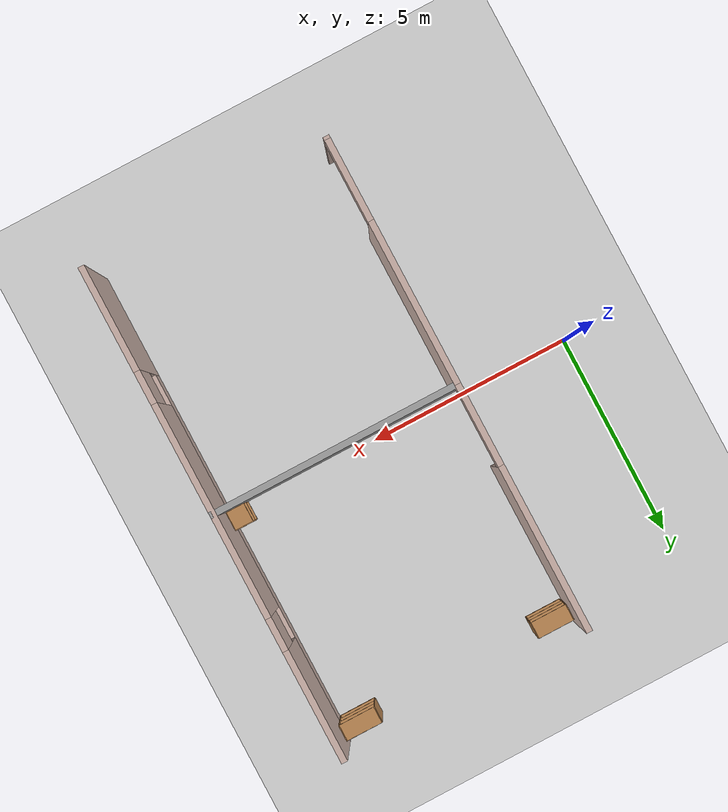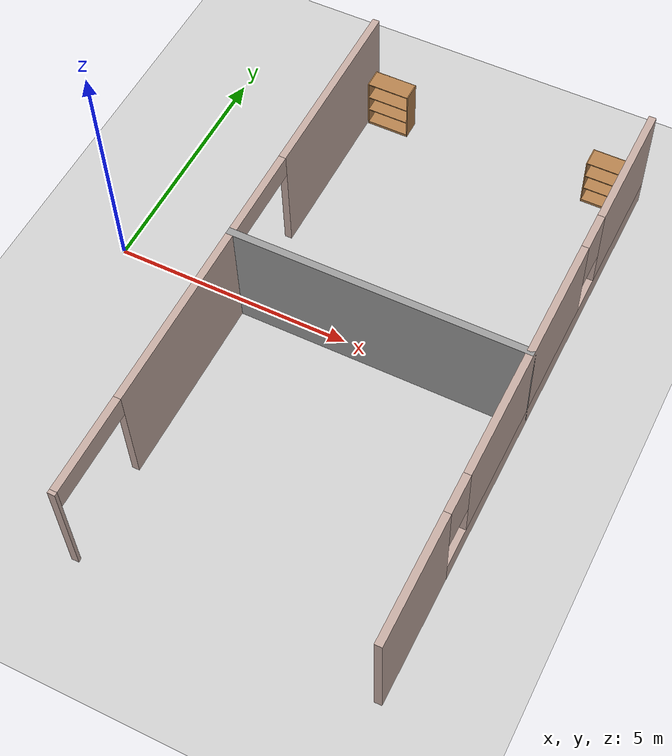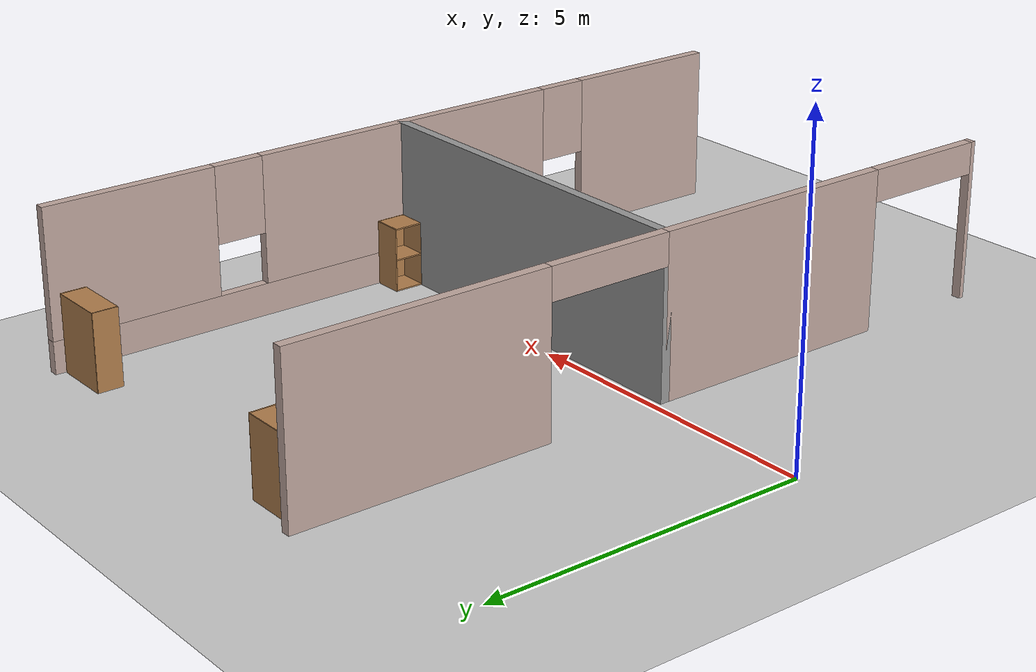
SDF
<sdf version="1.6">
 <world name="default">
  <model name="ground_plane">
   <static>1</static>
   <link name="link">
    <collision name="collision">
     <geometry><plane><normal>0 0 1</normal><size>100 100</size></plane></geometry>
     <surface><friction><ode><mu>100</mu><mu2>50</mu2></ode></friction></surface>
    </collision>
    <visual name="visual">
     <cast_shadows>0</cast_shadows>
     <geometry><plane><normal>0 0 1</normal><size>100 100</size></plane></geometry>
     <material>
      <script><uri>file://media/materials/scripts/gazebo.material</uri><name>Gazebo/Grey</name></script>
     </material>
    </visual>
   </link>
  </model>
  <model name="building">
   <link name="Wall_10">
    <pose>3 0 0 0 -0 1.5708</pose>
    <visual name="Wall_10_Visual_2">
     <pose>4.0375 0 1.25 0 -0 0</pose>
     <geometry><box><size>4.075 0.15 2.5</size></box></geometry>
     <material>
      <script><uri>file://media/materials/scripts/gazebo.material</uri><name>Gazebo/Grey</name></script>
      <ambient>0.760784 0.662745 0.627451 1</ambient>
      <shader type="pixel"/>
      <diffuse>0.7 0.7 0.7 1</diffuse>
      <specular>0.01 0.01 0.01 1</specular>
      <emissive>0 0 0 1</emissive>
     </material>
     <meta><layer>0</layer></meta>
    </visual>
    <visual name="Wall_10_Visual_4">
     <pose>1 0 2.25 0 -0 0</pose>
     <geometry><box><size>2 0.15 0.5</size></box></geometry>
     <material>
      <script><uri>file://media/materials/scripts/gazebo.material</uri><name>Gazebo/Grey</name></script>
      <ambient>0.760784 0.662745 0.627451 1</ambient>
      <shader type="pixel"/>
      <diffuse>0.7 0.7 0.7 1</diffuse>
      <specular>0.01 0.01 0.01 1</specular>
      <emissive>0 0 0 1</emissive>
     </material>
     <meta><layer>0</layer></meta>
    </visual>
    <visual name="Wall_10_Visual_0">
     <pose>-6.0375 0 1.25 0 -0 0</pose>
     <geometry><box><size>0.075 0.15 2.5</size></box></geometry>
     <material>
      <script><uri>file://media/materials/scripts/gazebo.material</uri><name>Gazebo/Grey</name></script>
      <ambient>0.760784 0.662745 0.627451 1</ambient>
      <shader type="pixel"/>
      <diffuse>0.7 0.7 0.7 1</diffuse>
      <specular>0.01 0.01 0.01 1</specular>
      <emissive>0 0 0 1</emissive>
     </material>
     <meta><layer>0</layer></meta>
    </visual>
    <visual name="Wall_10_Visual_3">
     <pose>-5 0 2.25 0 -0 0</pose>
     <geometry><box><size>2 0.15 0.5</size></box></geometry>
     <material>
      <script><uri>file://media/materials/scripts/gazebo.material</uri><name>Gazebo/Grey</name></script>
      <ambient>0.760784 0.662745 0.627451 1</ambient>
      <shader type="pixel"/>
      <diffuse>0.7 0.7 0.7 1</diffuse>
      <specular>0.01 0.01 0.01 1</specular>
      <emissive>0 0 0 1</emissive>
     </material>
     <meta><layer>0</layer></meta>
    </visual>
    <visual name="Wall_10_Visual_1">
     <pose>-2 0 1.25 0 -0 0</pose>
     <geometry><box><size>4 0.15 2.5</size></box></geometry>
     <material>
      <script><uri>file://media/materials/scripts/gazebo.material</uri><name>Gazebo/Grey</name></script>
      <ambient>0.760784 0.662745 0.627451 1</ambient>
      <shader type="pixel"/>
      <diffuse>0.7 0.7 0.7 1</diffuse>
      <specular>0.01 0.01 0.01 1</specular>
      <emissive>0 0 0 1</emissive>
     </material>
     <meta><layer>0</layer></meta>
    </visual>
    <collision name="Wall_10_Collision_4">
     <pose>1 0 2.25 0 -0 0</pose>
     <geometry><box><size>2 0.15 0.5</size></box></geometry>
     <surface>
      <friction>
       <ode><mu>1</mu><mu2>1</mu2><fdir1>0 0 0</fdir1><slip1>0</slip1><slip2>0</slip2></ode>
       <torsional>
        <coefficient>1</coefficient>
        <patch_radius>0</patch_radius>
        <surface_radius>0</surface_radius>
        <use_patch_radius>1</use_patch_radius>
        <ode><slip>0</slip></ode>
       </torsional>
      </friction>
      <bounce><restitution_coefficient>0</restitution_coefficient><threshold>1e+06</threshold></bounce>
      <contact>
       <collide_without_contact>0</collide_without_contact>
       <collide_without_contact_bitmask>1</collide_without_contact_bitmask>
       <collide_bitmask>1</collide_bitmask>
       <ode>
        <soft_cfm>0</soft_cfm>
        <soft_erp>0.2</soft_erp>
        <kp>1e+13</kp>
        <kd>1</kd>
        <max_vel>0.01</max_vel>
        <min_depth>0</min_depth>
       </ode>
       <bullet>
        <split_impulse>1</split_impulse>
        <split_impulse_penetration_threshold>-0.01</split_impulse_penetration_threshold>
        <soft_cfm>0</soft_cfm>
        <soft_erp>0.2</soft_erp>
        <kp>1e+13</kp>
        <kd>1</kd>
       </bullet>
      </contact>
     </surface>
    </collision>
    <collision name="Wall_10_Collision_0">
     <pose>-6.0375 0 1.25 0 -0 0</pose>
     <geometry><box><size>0.075 0.15 2.5</size></box></geometry>
     <surface>
      <friction>
       <ode><mu>1</mu><mu2>1</mu2><fdir1>0 0 0</fdir1><slip1>0</slip1><slip2>0</slip2></ode>
       <torsional>
        <coefficient>1</coefficient>
        <patch_radius>0</patch_radius>
        <surface_radius>0</surface_radius>
        <use_patch_radius>1</use_patch_radius>
        <ode><slip>0</slip></ode>
       </torsional>
      </friction>
      <bounce><restitution_coefficient>0</restitution_coefficient><threshold>1e+06</threshold></bounce>
      <contact>
       <collide_without_contact>0</collide_without_contact>
       <collide_without_contact_bitmask>1</collide_without_contact_bitmask>
       <collide_bitmask>1</collide_bitmask>
       <ode>
        <soft_cfm>0</soft_cfm>
        <soft_erp>0.2</soft_erp>
        <kp>1e+13</kp>
        <kd>1</kd>
        <max_vel>0.01</max_vel>
        <min_depth>0</min_depth>
       </ode>
       <bullet>
        <split_impulse>1</split_impulse>
        <split_impulse_penetration_threshold>-0.01</split_impulse_penetration_threshold>
        <soft_cfm>0</soft_cfm>
        <soft_erp>0.2</soft_erp>
        <kp>1e+13</kp>
        <kd>1</kd>
       </bullet>
      </contact>
     </surface>
    </collision>
    <collision name="Wall_10_Collision_1">
     <pose>-2 0 1.25 0 -0 0</pose>
     <geometry><box><size>4 0.15 2.5</size></box></geometry>
     <surface>
      <friction>
       <ode><mu>1</mu><mu2>1</mu2><fdir1>0 0 0</fdir1><slip1>0</slip1><slip2>0</slip2></ode>
       <torsional>
        <coefficient>1</coefficient>
        <patch_radius>0</patch_radius>
        <surface_radius>0</surface_radius>
        <use_patch_radius>1</use_patch_radius>
        <ode><slip>0</slip></ode>
       </torsional>
      </friction>
      <bounce><restitution_coefficient>0</restitution_coefficient><threshold>1e+06</threshold></bounce>
      <contact>
       <collide_without_contact>0</collide_without_contact>
       <collide_without_contact_bitmask>1</collide_without_contact_bitmask>
       <collide_bitmask>1</collide_bitmask>
       <ode>
        <soft_cfm>0</soft_cfm>
        <soft_erp>0.2</soft_erp>
        <kp>1e+13</kp>
        <kd>1</kd>
        <max_vel>0.01</max_vel>
        <min_depth>0</min_depth>
       </ode>
       <bullet>
        <split_impulse>1</split_impulse>
        <split_impulse_penetration_threshold>-0.01</split_impulse_penetration_threshold>
        <soft_cfm>0</soft_cfm>
        <soft_erp>0.2</soft_erp>
        <kp>1e+13</kp>
        <kd>1</kd>
       </bullet>
      </contact>
     </surface>
    </collision>
    <collision name="Wall_10_Collision_3">
     <pose>-5 0 2.25 0 -0 0</pose>
     <geometry><box><size>2 0.15 0.5</size></box></geometry>
     <surface>
      <friction>
       <ode><mu>1</mu><mu2>1</mu2><fdir1>0 0 0</fdir1><slip1>0</slip1><slip2>0</slip2></ode>
       <torsional>
        <coefficient>1</coefficient>
        <patch_radius>0</patch_radius>
        <surface_radius>0</surface_radius>
        <use_patch_radius>1</use_patch_radius>
        <ode><slip>0</slip></ode>
       </torsional>
      </friction>
      <bounce><restitution_coefficient>0</restitution_coefficient><threshold>1e+06</threshold></bounce>
      <contact>
       <collide_without_contact>0</collide_without_contact>
       <collide_without_contact_bitmask>1</collide_without_contact_bitmask>
       <collide_bitmask>1</collide_bitmask>
       <ode>
        <soft_cfm>0</soft_cfm>
        <soft_erp>0.2</soft_erp>
        <kp>1e+13</kp>
        <kd>1</kd>
        <max_vel>0.01</max_vel>
        <min_depth>0</min_depth>
       </ode>
       <bullet>
        <split_impulse>1</split_impulse>
        <split_impulse_penetration_threshold>-0.01</split_impulse_penetration_threshold>
        <soft_cfm>0</soft_cfm>
        <soft_erp>0.2</soft_erp>
        <kp>1e+13</kp>
        <kd>1</kd>
       </bullet>
      </contact>
     </surface>
    </collision>
    <collision name="Wall_10_Collision_2">
     <pose>4.0375 0 1.25 0 -0 0</pose>
     <geometry><box><size>4.075 0.15 2.5</size></box></geometry>
     <surface>
      <friction>
       <ode><mu>1</mu><mu2>1</mu2><fdir1>0 0 0</fdir1><slip1>0</slip1><slip2>0</slip2></ode>
       <torsional>
        <coefficient>1</coefficient>
        <patch_radius>0</patch_radius>
        <surface_radius>0</surface_radius>
        <use_patch_radius>1</use_patch_radius>
        <ode><slip>0</slip></ode>
       </torsional>
      </friction>
      <bounce><restitution_coefficient>0</restitution_coefficient><threshold>1e+06</threshold></bounce>
      <contact>
       <collide_without_contact>0</collide_without_contact>
       <collide_without_contact_bitmask>1</collide_without_contact_bitmask>
       <collide_bitmask>1</collide_bitmask>
       <ode>
        <soft_cfm>0</soft_cfm>
        <soft_erp>0.2</soft_erp>
        <kp>1e+13</kp>
        <kd>1</kd>
        <max_vel>0.01</max_vel>
        <min_depth>0</min_depth>
       </ode>
       <bullet>
        <split_impulse>1</split_impulse>
        <split_impulse_penetration_threshold>-0.01</split_impulse_penetration_threshold>
        <soft_cfm>0</soft_cfm>
        <soft_erp>0.2</soft_erp>
        <kp>1e+13</kp>
        <kd>1</kd>
       </bullet>
      </contact>
     </surface>
    </collision>
   </link>
   <link name="Wall_12">
    <pose>6 0 0 0 -0 0</pose>
    <visual name="Wall_12_Visual">
     <pose>0 0 1.25 0 -0 0</pose>
     <geometry><box><size>6.15 0.15 2.5</size></box></geometry>
     <material>
      <script><uri>file://media/materials/scripts/gazebo.material</uri><name>Gazebo/Grey</name></script>
      <ambient>1 1 1 1</ambient>
      <shader type="pixel"/>
      <diffuse>0.7 0.7 0.7 1</diffuse>
      <specular>0.01 0.01 0.01 1</specular>
      <emissive>0 0 0 1</emissive>
     </material>
     <meta><layer>0</layer></meta>
    </visual>
    <collision name="Wall_12_Collision">
     <pose>0 0 1.25 0 -0 0</pose>
     <geometry><box><size>6.15 0.15 2.5</size></box></geometry>
     <surface>
      <friction>
       <ode><mu>1</mu><mu2>1</mu2><fdir1>0 0 0</fdir1><slip1>0</slip1><slip2>0</slip2></ode>
       <torsional>
        <coefficient>1</coefficient>
        <patch_radius>0</patch_radius>
        <surface_radius>0</surface_radius>
        <use_patch_radius>1</use_patch_radius>
        <ode><slip>0</slip></ode>
       </torsional>
      </friction>
      <bounce><restitution_coefficient>0</restitution_coefficient><threshold>1e+06</threshold></bounce>
      <contact>
       <collide_without_contact>0</collide_without_contact>
       <collide_without_contact_bitmask>1</collide_without_contact_bitmask>
       <collide_bitmask>1</collide_bitmask>
       <ode>
        <soft_cfm>0</soft_cfm>
        <soft_erp>0.2</soft_erp>
        <kp>1e+13</kp>
        <kd>1</kd>
        <max_vel>0.01</max_vel>
        <min_depth>0</min_depth>
       </ode>
       <bullet>
        <split_impulse>1</split_impulse>
        <split_impulse_penetration_threshold>-0.01</split_impulse_penetration_threshold>
        <soft_cfm>0</soft_cfm>
        <soft_erp>0.2</soft_erp>
        <kp>1e+13</kp>
        <kd>1</kd>
       </bullet>
      </contact>
     </surface>
    </collision>
   </link>
   <link name="Wall_2">
    <pose>9 0 0 0 -0 1.5708</pose>
    <visual name="Wall_2_Visual_1">
     <pose>1.28628 0 0.25 0 -0 0</pose>
     <geometry><box><size>9.57745 0.15 0.5</size></box></geometry>
     <material>
      <script><uri>file://media/materials/scripts/gazebo.material</uri><name>Gazebo/Grey</name></script>
      <ambient>0.760784 0.662745 0.627451 1</ambient>
      <shader type="pixel"/>
      <diffuse>0.7 0.7 0.7 1</diffuse>
      <specular>0.01 0.01 0.01 1</specular>
      <emissive>0 0 0 1</emissive>
     </material>
     <meta><layer>0</layer></meta>
    </visual>
    <visual name="Wall_2_Visual_2">
     <pose>-0.07576 0 1.5 0 -0 0</pose>
     <geometry><box><size>5.25338 0.15 2</size></box></geometry>
     <material>
      <script><uri>file://media/materials/scripts/gazebo.material</uri><name>Gazebo/Grey</name></script>
      <ambient>0.760784 0.662745 0.627451 1</ambient>
      <shader type="pixel"/>
      <diffuse>0.7 0.7 0.7 1</diffuse>
      <specular>0.01 0.01 0.01 1</specular>
      <emissive>0 0 0 1</emissive>
     </material>
     <meta><layer>0</layer></meta>
    </visual>
    <visual name="Wall_2_Visual_3">
     <pose>4.71296 0 1.5 0 -0 0</pose>
     <geometry><box><size>2.72407 0.15 2</size></box></geometry>
     <material>
      <script><uri>file://media/materials/scripts/gazebo.material</uri><name>Gazebo/Grey</name></script>
      <ambient>0.760784 0.662745 0.627451 1</ambient>
      <shader type="pixel"/>
      <diffuse>0.7 0.7 0.7 1</diffuse>
      <specular>0.01 0.01 0.01 1</specular>
      <emissive>0 0 0 1</emissive>
     </material>
     <meta><layer>0</layer></meta>
    </visual>
    <visual name="Wall_2_Visual_0">
     <pose>-4.78873 0 1.25 0 -0 0</pose>
     <geometry><box><size>2.57255 0.15 2.5</size></box></geometry>
     <material>
      <script><uri>file://media/materials/scripts/gazebo.material</uri><name>Gazebo/Grey</name></script>
      <ambient>0.760784 0.662745 0.627451 1</ambient>
      <shader type="pixel"/>
      <diffuse>0.7 0.7 0.7 1</diffuse>
      <specular>0.01 0.01 0.01 1</specular>
      <emissive>0 0 0 1</emissive>
     </material>
     <meta><layer>0</layer></meta>
    </visual>
    <visual name="Wall_2_Visual_5">
     <pose>2.95093 0 1.9 0 -0 0</pose>
     <geometry><box><size>0.8 0.15 1.2</size></box></geometry>
     <material>
      <script><uri>file://media/materials/scripts/gazebo.material</uri><name>Gazebo/Grey</name></script>
      <ambient>0.760784 0.662745 0.627451 1</ambient>
      <shader type="pixel"/>
      <diffuse>0.7 0.7 0.7 1</diffuse>
      <specular>0.01 0.01 0.01 1</specular>
      <emissive>0 0 0 1</emissive>
     </material>
     <meta><layer>0</layer></meta>
    </visual>
    <visual name="Wall_2_Visual_4">
     <pose>-3.10245 0 1.9 0 -0 0</pose>
     <geometry><box><size>0.8 0.15 1.2</size></box></geometry>
     <material>
      <script><uri>file://media/materials/scripts/gazebo.material</uri><name>Gazebo/Grey</name></script>
      <ambient>0.760784 0.662745 0.627451 1</ambient>
      <shader type="pixel"/>
      <diffuse>0.7 0.7 0.7 1</diffuse>
      <specular>0.01 0.01 0.01 1</specular>
      <emissive>0 0 0 1</emissive>
     </material>
     <meta><layer>0</layer></meta>
    </visual>
    <collision name="Wall_2_Collision_0">
     <pose>-4.78873 0 1.25 0 -0 0</pose>
     <geometry><box><size>2.57255 0.15 2.5</size></box></geometry>
     <surface>
      <friction>
       <ode><mu>1</mu><mu2>1</mu2><fdir1>0 0 0</fdir1><slip1>0</slip1><slip2>0</slip2></ode>
       <torsional>
        <coefficient>1</coefficient>
        <patch_radius>0</patch_radius>
        <surface_radius>0</surface_radius>
        <use_patch_radius>1</use_patch_radius>
        <ode><slip>0</slip></ode>
       </torsional>
      </friction>
      <bounce><restitution_coefficient>0</restitution_coefficient><threshold>1e+06</threshold></bounce>
      <contact>
       <collide_without_contact>0</collide_without_contact>
       <collide_without_contact_bitmask>1</collide_without_contact_bitmask>
       <collide_bitmask>1</collide_bitmask>
       <ode>
        <soft_cfm>0</soft_cfm>
        <soft_erp>0.2</soft_erp>
        <kp>1e+13</kp>
        <kd>1</kd>
        <max_vel>0.01</max_vel>
        <min_depth>0</min_depth>
       </ode>
       <bullet>
        <split_impulse>1</split_impulse>
        <split_impulse_penetration_threshold>-0.01</split_impulse_penetration_threshold>
        <soft_cfm>0</soft_cfm>
        <soft_erp>0.2</soft_erp>
        <kp>1e+13</kp>
        <kd>1</kd>
       </bullet>
      </contact>
     </surface>
    </collision>
    <collision name="Wall_2_Collision_2">
     <pose>-0.07576 0 1.5 0 -0 0</pose>
     <geometry><box><size>5.25338 0.15 2</size></box></geometry>
     <surface>
      <friction>
       <ode><mu>1</mu><mu2>1</mu2><fdir1>0 0 0</fdir1><slip1>0</slip1><slip2>0</slip2></ode>
       <torsional>
        <coefficient>1</coefficient>
        <patch_radius>0</patch_radius>
        <surface_radius>0</surface_radius>
        <use_patch_radius>1</use_patch_radius>
        <ode><slip>0</slip></ode>
       </torsional>
      </friction>
      <bounce><restitution_coefficient>0</restitution_coefficient><threshold>1e+06</threshold></bounce>
      <contact>
       <collide_without_contact>0</collide_without_contact>
       <collide_without_contact_bitmask>1</collide_without_contact_bitmask>
       <collide_bitmask>1</collide_bitmask>
       <ode>
        <soft_cfm>0</soft_cfm>
        <soft_erp>0.2</soft_erp>
        <kp>1e+13</kp>
        <kd>1</kd>
        <max_vel>0.01</max_vel>
        <min_depth>0</min_depth>
       </ode>
       <bullet>
        <split_impulse>1</split_impulse>
        <split_impulse_penetration_threshold>-0.01</split_impulse_penetration_threshold>
        <soft_cfm>0</soft_cfm>
        <soft_erp>0.2</soft_erp>
        <kp>1e+13</kp>
        <kd>1</kd>
       </bullet>
      </contact>
     </surface>
    </collision>
    <collision name="Wall_2_Collision_1">
     <pose>1.28628 0 0.25 0 -0 0</pose>
     <geometry><box><size>9.57745 0.15 0.5</size></box></geometry>
     <surface>
      <friction>
       <ode><mu>1</mu><mu2>1</mu2><fdir1>0 0 0</fdir1><slip1>0</slip1><slip2>0</slip2></ode>
       <torsional>
        <coefficient>1</coefficient>
        <patch_radius>0</patch_radius>
        <surface_radius>0</surface_radius>
        <use_patch_radius>1</use_patch_radius>
        <ode><slip>0</slip></ode>
       </torsional>
      </friction>
      <bounce><restitution_coefficient>0</restitution_coefficient><threshold>1e+06</threshold></bounce>
      <contact>
       <collide_without_contact>0</collide_without_contact>
       <collide_without_contact_bitmask>1</collide_without_contact_bitmask>
       <collide_bitmask>1</collide_bitmask>
       <ode>
        <soft_cfm>0</soft_cfm>
        <soft_erp>0.2</soft_erp>
        <kp>1e+13</kp>
        <kd>1</kd>
        <max_vel>0.01</max_vel>
        <min_depth>0</min_depth>
       </ode>
       <bullet>
        <split_impulse>1</split_impulse>
        <split_impulse_penetration_threshold>-0.01</split_impulse_penetration_threshold>
        <soft_cfm>0</soft_cfm>
        <soft_erp>0.2</soft_erp>
        <kp>1e+13</kp>
        <kd>1</kd>
       </bullet>
      </contact>
     </surface>
    </collision>
    <collision name="Wall_2_Collision_4">
     <pose>-3.10245 0 1.9 0 -0 0</pose>
     <geometry><box><size>0.8 0.15 1.2</size></box></geometry>
     <surface>
      <friction>
       <ode><mu>1</mu><mu2>1</mu2><fdir1>0 0 0</fdir1><slip1>0</slip1><slip2>0</slip2></ode>
       <torsional>
        <coefficient>1</coefficient>
        <patch_radius>0</patch_radius>
        <surface_radius>0</surface_radius>
        <use_patch_radius>1</use_patch_radius>
        <ode><slip>0</slip></ode>
       </torsional>
      </friction>
      <bounce><restitution_coefficient>0</restitution_coefficient><threshold>1e+06</threshold></bounce>
      <contact>
       <collide_without_contact>0</collide_without_contact>
       <collide_without_contact_bitmask>1</collide_without_contact_bitmask>
       <collide_bitmask>1</collide_bitmask>
       <ode>
        <soft_cfm>0</soft_cfm>
        <soft_erp>0.2</soft_erp>
        <kp>1e+13</kp>
        <kd>1</kd>
        <max_vel>0.01</max_vel>
        <min_depth>0</min_depth>
       </ode>
       <bullet>
        <split_impulse>1</split_impulse>
        <split_impulse_penetration_threshold>-0.01</split_impulse_penetration_threshold>
        <soft_cfm>0</soft_cfm>
        <soft_erp>0.2</soft_erp>
        <kp>1e+13</kp>
        <kd>1</kd>
       </bullet>
      </contact>
     </surface>
    </collision>
    <collision name="Wall_2_Collision_3">
     <pose>4.71296 0 1.5 0 -0 0</pose>
     <geometry><box><size>2.72407 0.15 2</size></box></geometry>
     <surface>
      <friction>
       <ode><mu>1</mu><mu2>1</mu2><fdir1>0 0 0</fdir1><slip1>0</slip1><slip2>0</slip2></ode>
       <torsional>
        <coefficient>1</coefficient>
        <patch_radius>0</patch_radius>
        <surface_radius>0</surface_radius>
        <use_patch_radius>1</use_patch_radius>
        <ode><slip>0</slip></ode>
       </torsional>
      </friction>
      <bounce><restitution_coefficient>0</restitution_coefficient><threshold>1e+06</threshold></bounce>
      <contact>
       <collide_without_contact>0</collide_without_contact>
       <collide_without_contact_bitmask>1</collide_without_contact_bitmask>
       <collide_bitmask>1</collide_bitmask>
       <ode>
        <soft_cfm>0</soft_cfm>
        <soft_erp>0.2</soft_erp>
        <kp>1e+13</kp>
        <kd>1</kd>
        <max_vel>0.01</max_vel>
        <min_depth>0</min_depth>
       </ode>
       <bullet>
        <split_impulse>1</split_impulse>
        <split_impulse_penetration_threshold>-0.01</split_impulse_penetration_threshold>
        <soft_cfm>0</soft_cfm>
        <soft_erp>0.2</soft_erp>
        <kp>1e+13</kp>
        <kd>1</kd>
       </bullet>
      </contact>
     </surface>
    </collision>
    <collision name="Wall_2_Collision_5">
     <pose>2.95093 0 1.9 0 -0 0</pose>
     <geometry><box><size>0.8 0.15 1.2</size></box></geometry>
     <surface>
      <friction>
       <ode><mu>1</mu><mu2>1</mu2><fdir1>0 0 0</fdir1><slip1>0</slip1><slip2>0</slip2></ode>
       <torsional>
        <coefficient>1</coefficient>
        <patch_radius>0</patch_radius>
        <surface_radius>0</surface_radius>
        <use_patch_radius>1</use_patch_radius>
        <ode><slip>0</slip></ode>
       </torsional>
      </friction>
      <bounce><restitution_coefficient>0</restitution_coefficient><threshold>1e+06</threshold></bounce>
      <contact>
       <collide_without_contact>0</collide_without_contact>
       <collide_without_contact_bitmask>1</collide_without_contact_bitmask>
       <collide_bitmask>1</collide_bitmask>
       <ode>
        <soft_cfm>0</soft_cfm>
        <soft_erp>0.2</soft_erp>
        <kp>1e+13</kp>
        <kd>1</kd>
        <max_vel>0.01</max_vel>
        <min_depth>0</min_depth>
       </ode>
       <bullet>
        <split_impulse>1</split_impulse>
        <split_impulse_penetration_threshold>-0.01</split_impulse_penetration_threshold>
        <soft_cfm>0</soft_cfm>
        <soft_erp>0.2</soft_erp>
        <kp>1e+13</kp>
        <kd>1</kd>
       </bullet>
      </contact>
     </surface>
    </collision>
   </link>
   <model name="bookshelf">
    <static>1</static>
    <link name="link">
     <inertial><mass>1</mass></inertial>
     <collision name="back">
      <pose>0 0.005 0.6 0 -0 0</pose>
      <geometry><box><size>0.9 0.01 1.2</size></box></geometry>
     </collision>
     <visual name="visual1">
      <pose>0 0.005 0.6 0 -0 0</pose>
      <geometry><box><size>0.9 0.01 1.2</size></box></geometry>
      <material>
       <script><uri>file://media/materials/scripts/gazebo.material</uri><name>Gazebo/Wood</name></script>
      </material>
     </visual>
     <collision name="left_side">
      <pose>0.45 -0.195 0.6 0 -0 0</pose>
      <geometry><box><size>0.02 0.4 1.2</size></box></geometry>
     </collision>
     <visual name="visual2">
      <pose>0.45 -0.195 0.6 0 -0 0</pose>
      <geometry><box><size>0.02 0.4 1.2</size></box></geometry>
      <material>
       <script><uri>file://media/materials/scripts/gazebo.material</uri><name>Gazebo/Wood</name></script>
      </material>
     </visual>
     <collision name="right_side">
      <pose>-0.45 -0.195 0.6 0 -0 0</pose>
      <geometry><box><size>0.02 0.4 1.2</size></box></geometry>
     </collision>
     <visual name="visual3">
      <pose>-0.45 -0.195 0.6 0 -0 0</pose>
      <geometry><box><size>0.02 0.4 1.2</size></box></geometry>
      <material>
       <script><uri>file://media/materials/scripts/gazebo.material</uri><name>Gazebo/Wood</name></script>
      </material>
     </visual>
     <collision name="bottom">
      <pose>0 -0.195 0.03 0 -0 0</pose>
      <geometry><box><size>0.88 0.4 0.06</size></box></geometry>
     </collision>
     <visual name="visual4">
      <pose>0 -0.195 0.03 0 -0 0</pose>
      <geometry><box><size>0.88 0.4 0.06</size></box></geometry>
      <material>
       <script><uri>file://media/materials/scripts/gazebo.material</uri><name>Gazebo/Wood</name></script>
      </material>
     </visual>
     <collision name="top">
      <pose>0 -0.195 1.19 0 -0 0</pose>
      <geometry><box><size>0.88 0.4 0.02</size></box></geometry>
     </collision>
     <visual name="visual5">
      <pose>0 -0.195 1.19 0 -0 0</pose>
      <geometry><box><size>0.88 0.4 0.02</size></box></geometry>
      <material>
       <script><uri>file://media/materials/scripts/gazebo.material</uri><name>Gazebo/Wood</name></script>
      </material>
     </visual>
     <collision name="low_shelf">
      <pose>0 -0.195 0.43 0 -0 0</pose>
      <geometry><box><size>0.88 0.4 0.02</size></box></geometry>
     </collision>
     <visual name="visual6">
      <pose>0 -0.195 0.43 0 -0 0</pose>
      <geometry><box><size>0.88 0.4 0.02</size></box></geometry>
      <material>
       <script><uri>file://media/materials/scripts/gazebo.material</uri><name>Gazebo/Wood</name></script>
      </material>
     </visual>
     <collision name="high_shelf">
      <pose>0 -0.195 0.8 0 -0 0</pose>
      <geometry><box><size>0.88 0.4 0.02</size></box></geometry>
     </collision>
     <visual name="visual7">
      <pose>0 -0.195 0.8 0 -0 0</pose>
      <geometry><box><size>0.88 0.4 0.02</size></box></geometry>
      <material>
       <script><uri>file://media/materials/scripts/gazebo.material</uri><name>Gazebo/Wood</name></script>
      </material>
     </visual>
    </link>
    <pose>8.45427 5.90745 0 0 -0 0</pose>
   </model>
   <model name="bookshelf_0">
    <static>1</static>
    <link name="link">
     <inertial><mass>1</mass></inertial>
     <collision name="back">
      <pose>0 0.005 0.6 0 -0 0</pose>
      <geometry><box><size>0.9 0.01 1.2</size></box></geometry>
     </collision>
     <visual name="visual1">
      <pose>0 0.005 0.6 0 -0 0</pose>
      <geometry><box><size>0.9 0.01 1.2</size></box></geometry>
      <material>
       <script><uri>file://media/materials/scripts/gazebo.material</uri><name>Gazebo/Wood</name></script>
      </material>
     </visual>
     <collision name="left_side">
      <pose>0.45 -0.195 0.6 0 -0 0</pose>
      <geometry><box><size>0.02 0.4 1.2</size></box></geometry>
     </collision>
     <visual name="visual2">
      <pose>0.45 -0.195 0.6 0 -0 0</pose>
      <geometry><box><size>0.02 0.4 1.2</size></box></geometry>
      <material>
       <script><uri>file://media/materials/scripts/gazebo.material</uri><name>Gazebo/Wood</name></script>
      </material>
     </visual>
     <collision name="right_side">
      <pose>-0.45 -0.195 0.6 0 -0 0</pose>
      <geometry><box><size>0.02 0.4 1.2</size></box></geometry>
     </collision>
     <visual name="visual3">
      <pose>-0.45 -0.195 0.6 0 -0 0</pose>
      <geometry><box><size>0.02 0.4 1.2</size></box></geometry>
      <material>
       <script><uri>file://media/materials/scripts/gazebo.material</uri><name>Gazebo/Wood</name></script>
      </material>
     </visual>
     <collision name="bottom">
      <pose>0 -0.195 0.03 0 -0 0</pose>
      <geometry><box><size>0.88 0.4 0.06</size></box></geometry>
     </collision>
     <visual name="visual4">
      <pose>0 -0.195 0.03 0 -0 0</pose>
      <geometry><box><size>0.88 0.4 0.06</size></box></geometry>
      <material>
       <script><uri>file://media/materials/scripts/gazebo.material</uri><name>Gazebo/Wood</name></script>
      </material>
     </visual>
     <collision name="top">
      <pose>0 -0.195 1.19 0 -0 0</pose>
      <geometry><box><size>0.88 0.4 0.02</size></box></geometry>
     </collision>
     <visual name="visual5">
      <pose>0 -0.195 1.19 0 -0 0</pose>
      <geometry><box><size>0.88 0.4 0.02</size></box></geometry>
      <material>
       <script><uri>file://media/materials/scripts/gazebo.material</uri><name>Gazebo/Wood</name></script>
      </material>
     </visual>
     <collision name="low_shelf">
      <pose>0 -0.195 0.43 0 -0 0</pose>
      <geometry><box><size>0.88 0.4 0.02</size></box></geometry>
     </collision>
     <visual name="visual6">
      <pose>0 -0.195 0.43 0 -0 0</pose>
      <geometry><box><size>0.88 0.4 0.02</size></box></geometry>
      <material>
       <script><uri>file://media/materials/scripts/gazebo.material</uri><name>Gazebo/Wood</name></script>
      </material>
     </visual>
     <collision name="high_shelf">
      <pose>0 -0.195 0.8 0 -0 0</pose>
      <geometry><box><size>0.88 0.4 0.02</size></box></geometry>
     </collision>
     <visual name="visual7">
      <pose>0 -0.195 0.8 0 -0 0</pose>
      <geometry><box><size>0.88 0.4 0.02</size></box></geometry>
      <material>
       <script><uri>file://media/materials/scripts/gazebo.material</uri><name>Gazebo/Wood</name></script>
      </material>
     </visual>
    </link>
    <pose>3.54832 5.89768 0 0 -0 0</pose>
   </model>
   <model name="cabinet">
    <static>1</static>
    <link name="cabinet_bottom_plate">
     <inertial>
      <pose>0 0 -1 0 -0 0</pose>
      <inertia><ixx>2.05</ixx><ixy>0</ixy><ixz>0</ixz><iyy>2.05</iyy><iyz>0</iyz><izz>2.05</izz></inertia>
      <mass>25</mass>
     </inertial>
     <collision name="cabinet_bottom_plate_geom">
      <pose>0 0 0.01 0 -0 0</pose>
      <geometry><box><size>0.45 0.45 0.02</size></box></geometry>
     </collision>
     <visual name="cabinet_bottom_plate_geom_visual">
      <pose>0 0 0.01 0 -0 0</pose>
      <geometry><box><size>0.45 0.45 0.02</size></box></geometry>
      <material>
       <script><uri>file://media/materials/scripts/gazebo.material</uri><name>Gazebo/Wood</name></script>
      </material>
     </visual>
     <collision name="cabinet_bottom_plate_geom_cabinet_back_plate">
      <pose>0.235 0 0.51 0 -0 0</pose>
      <geometry><box><size>0.02 0.45 1.02</size></box></geometry>
     </collision>
     <visual name="cabinet_bottom_plate_geom_cabinet_back_plate_visual">
      <pose>0.235 0 0.51 0 -0 0</pose>
      <geometry><box><size>0.02 0.45 1.02</size></box></geometry>
      <material>
       <script><uri>file://media/materials/scripts/gazebo.material</uri><name>Gazebo/Wood</name></script>
      </material>
     </visual>
     <collision name="cabinet_bottom_plate_geom_cabinet_left_plate">
      <pose>0 0.235 0.51 0 -0 0</pose>
      <geometry><box><size>0.45 0.02 1.02</size></box></geometry>
     </collision>
     <visual name="cabinet_bottom_plate_geom_cabinet_left_plate_visual">
      <pose>0 0.235 0.51 0 -0 0</pose>
      <geometry><box><size>0.45 0.02 1.02</size></box></geometry>
      <material>
       <script><uri>file://media/materials/scripts/gazebo.material</uri><name>Gazebo/Wood</name></script>
      </material>
     </visual>
     <collision name="cabinet_bottom_plate_geom_cabinet_middle_plate">
      <pose>0 0 0.51 0 -0 0</pose>
      <geometry><box><size>0.45 0.45 0.02</size></box></geometry>
     </collision>
     <visual name="cabinet_bottom_plate_geom_cabinet_middle_plate_visual">
      <pose>0 0 0.51 0 -0 0</pose>
      <geometry><box><size>0.45 0.45 0.02</size></box></geometry>
      <material>
       <script><uri>file://media/materials/scripts/gazebo.material</uri><name>Gazebo/Wood</name></script>
      </material>
     </visual>
     <collision name="cabinet_bottom_plate_geom_cabinet_right_plate">
      <pose>0 -0.235 0.51 0 -0 0</pose>
      <geometry><box><size>0.45 0.02 1.02</size></box></geometry>
     </collision>
     <visual name="cabinet_bottom_plate_geom_cabinet_right_plate_visual">
      <pose>0 -0.235 0.51 0 -0 0</pose>
      <geometry><box><size>0.45 0.02 1.02</size></box></geometry>
      <material>
       <script><uri>file://media/materials/scripts/gazebo.material</uri><name>Gazebo/Wood</name></script>
      </material>
     </visual>
     <collision name="cabinet_bottom_plate_geom_cabinet_top_plate">
      <pose>0 0 1.01 0 -0 0</pose>
      <geometry><box><size>0.45 0.45 0.02</size></box></geometry>
     </collision>
     <visual name="cabinet_bottom_plate_geom_cabinet_top_plate_visual">
      <pose>0 0 1.01 0 -0 0</pose>
      <geometry><box><size>0.45 0.45 0.02</size></box></geometry>
      <material>
       <script><uri>file://media/materials/scripts/gazebo.material</uri><name>Gazebo/Wood</name></script>
      </material>
     </visual>
    </link>
    <pose>8.68873 0.304293 0 0 -0 0</pose>
   </model>
   <static>1</static>
   <pose>-0.188098 -0.21332 0 0 -0 0</pose>
  </model>
 </world>
</sdf>
